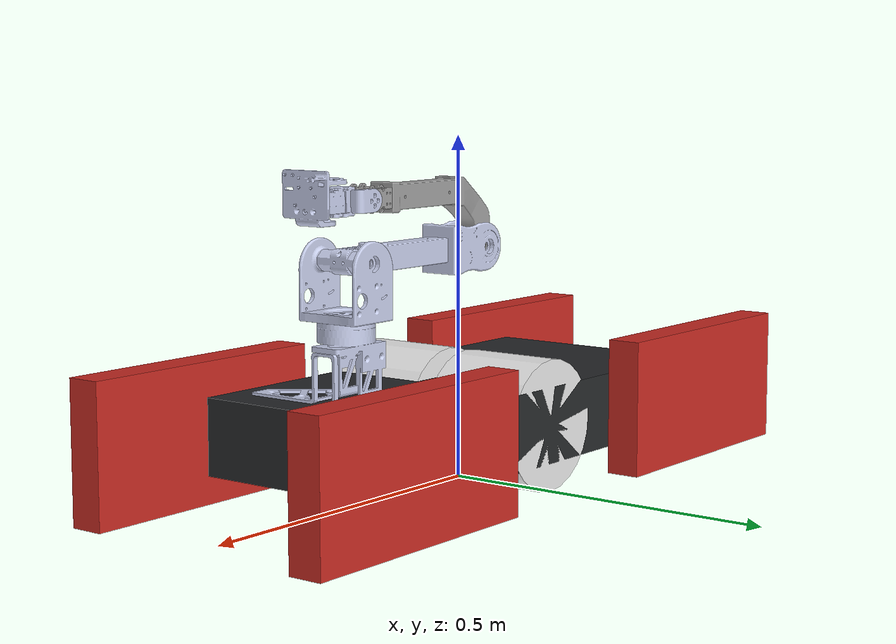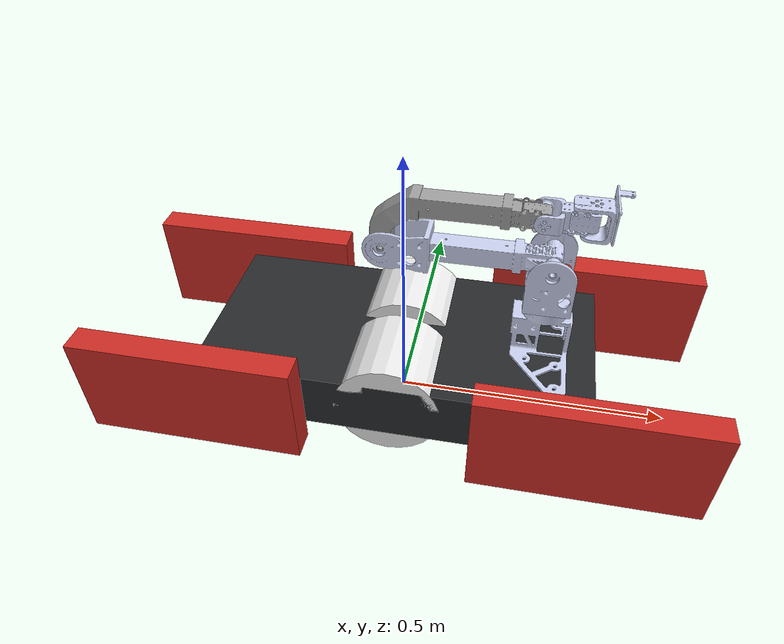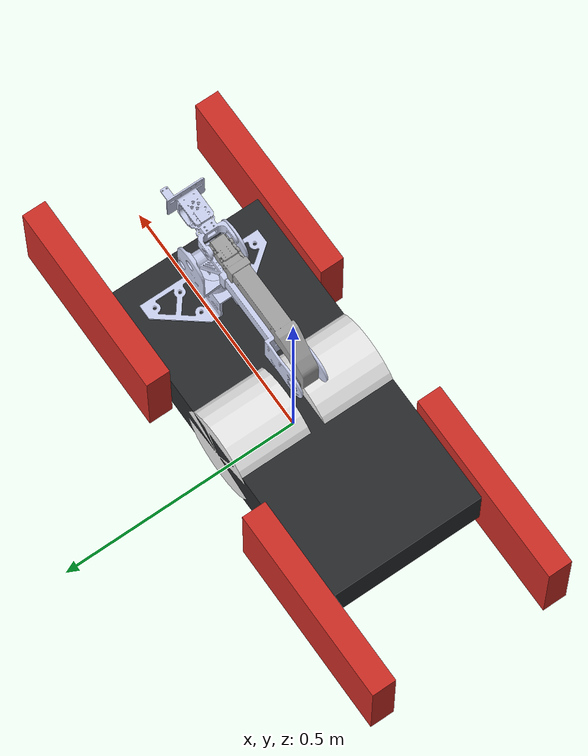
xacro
<?xml version="1.0"?>
<robot xmlns:xacro="http://www.ros.org/wiki/xacro" name="Lotti3">
    <xacro:arg name="initial_positions_file" default="initial_positions.yaml" />

    <!-- Import Lotti3 urdf file -->
    <xacro:include filename="$(find lotti_control3)/description/urdf/Lotti.urdf.xacro" />

    <!-- Import control_xacro -->
    <xacro:include filename="Lotti3.ros2_control.xacro" />

    <xacro:Lotti3_ros2_control name="FakeSystem" initial_positions_file="$(arg initial_positions_file)"/>

</robot>

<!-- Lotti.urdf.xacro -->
<robot xmlns:xacro="http://www.ros.org/wiki/xacro" name="Lotti3">

<!-- Simulation switch: pass use_sim:=true for Gazebo, default is real hardware -->
    <xacro:arg name="use_sim" default="false"/>

<!-- included files for properties -->
    <xacro:include filename="urdf_inertial_shapes.xacro" />
    <xacro:include filename="urdf_materials.xacro"/>

<!-- include files for parts -->
    <xacro:include filename="Lotti_arm3.xacro"/>
    <xacro:include filename="Lotti_body.xacro"/>

<!-- include controllers — switches between simulation and real hardware plugins -->
    <xacro:if value="$(arg use_sim)">
        <xacro:include filename="Lotti_gazebo_control.xacro"/>
        <xacro:include filename="$(find lotti_control3)/ros2_control/Lotti_sim.ros2_control.xacro"/>
    </xacro:if>
    <xacro:unless value="$(arg use_sim)">
        <xacro:include filename="$(find lotti_control3)/ros2_control/Lotti.ros2_control.xacro"/>
    </xacro:unless>

<!-- world origin -->

</robot>

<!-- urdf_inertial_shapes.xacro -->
<robot xmlns:xacro="http://www.ros.org/wiki/xacro" >

    <xacro:macro name="inertial_box" params="mass x y z *origin " >
        <inertial>
            <xacro:insert_block name="origin" />
            <mass value="${mass}" />
            <inertia ixx="${(1/12) * mass * (y*y+z*z)}" ixy="0.0" ixz="0.0"
                    iyy="${(1/12) * mass * (x*x+z*z)}" iyz="0.0"
                    izz="${(1/12) * mass * (x*x+z*z)}" />
        </inertial>
    </xacro:macro>
</robot>

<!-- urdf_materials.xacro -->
<robot xmlns:xacro="http://www.ros.org/wiki/xacro" >

    <material name="red">
        <color rgba="${204/255} ${44/255} ${36/255} 1" />
    </material>

    <material name="black">
        <color rgba ="${39/255} ${41/255} ${43/255} 1" />
    </material>

    <material name="orange">
        <color rgba ="${255/255} ${165/255} ${0/255} 1" />
    </material>

</robot>

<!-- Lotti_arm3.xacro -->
<robot xmlns:xacro="http://www.ros.org/wiki/xacro" >

<!-- Main Body info -->
  <xacro:property name="body_length" value="0.7"/>
  <xacro:property name="body_width" value="0.33"/>
  <xacro:property name="body_height" value="0.15"/>
  <xacro:property name="body_mass" value="25.0"/>

  <joint name="arm_base_joint" type="fixed">
    <origin xyz="${body_length/2 - 0.1} 0 ${body_height}" rpy="0 0 ${pi/2}" />
    <parent link="body_link" />
    <child link="arm_base_link" />
  </joint>

  <link name="arm_base_link">
    <inertial>
      <origin
        xyz="0.00013666 0.0026852 0.072354"
        rpy="0 0 0" />
      <mass value="0.25614" />
      <inertia
        ixx="0.00022758"
        ixy="-5.9194E-09"
        ixz="-3.0317E-10"
        iyy="0.00034913"
        iyz="-5.4826E-06"
        izz="0.00044613" />
    </inertial>
    <visual>
      <origin
        xyz="0 0 0"
        rpy="0 0 0" />
      <geometry>
        <mesh filename="package://lotti_control3/description/meshes/base_link.STL" />
      </geometry>
      <material name="">
        <color rgba="0.79216 0.81961 0.93333 1" />
      </material>
    </visual>
    <collision>
      <origin
        xyz="0 0 0"
        rpy="0 0 0" />
      <geometry>
        <mesh filename="package://lotti_control3/description/meshes/base_link.STL" />
      </geometry>
    </collision>
  </link>

  <link name="arm_link1_link">
    <inertial>
      <origin
        xyz="0.00028288 0.00078368 -0.043313"
        rpy="0 0 0" />
      <mass value="0.13631" />
      <inertia
        ixx="0.00022673"
        ixy="1.0071E-09"
        ixz="-1.2336E-07"
        iyy="0.00016614"
        iyz="4.2298E-07"
        izz="9.1314E-05" />
    </inertial>
    <visual>
      <origin
        xyz="0 0 0"
        rpy="0 0 0" />
      <geometry>
        <mesh filename="package://lotti_control3/description/meshes/arm_link1_link.STL" />
      </geometry>
      <material name="">
        <color rgba="0.79216 0.81961 0.93333 1" />
      </material>
    </visual>
    <collision>
      <origin
        xyz="0 0 0"
        rpy="0 0 0" />
      <geometry>
        <mesh filename="package://lotti_control3/description/meshes/arm_link1_link.STL" />
      </geometry>
    </collision>
  </link>

  <joint name="arm_link1_joint" type="revolute">
    <origin
      xyz="0 0 0.189"
      rpy="0 0 0" />
    <parent link="arm_base_link" />
    <child link="arm_link1_link" />
    <axis xyz="0 0 -1" />
    <limit lower="-3" upper="3" effort="10" velocity="0.25" />
  </joint>

  <link name="arm_link2_link">
    <inertial>
      <origin
        xyz="0.00022266 0.13312 -2.4551E-05"
        rpy="0 0 0" />
      <mass value="0.31437" />
      <inertia
        ixx="0.000499"
        ixy="-1.7595E-06"
        ixz="5.7714E-07"
        iyy="0.00016924"
        iyz="1.4222E-08"
        izz="0.00054376" />
    </inertial>
    <visual>
      <origin
        xyz="0 0 0"
        rpy="0 0 0" />
      <geometry>
        <mesh filename="package://lotti_control3/description/meshes/arm_link2_link.STL" />
      </geometry>
      <material name="">
        <color rgba="0.79216 0.81961 0.93333 1" />
      </material>
    </visual>
    <collision>
      <origin
        xyz="0 0 0"
        rpy="0 0 0" />
      <geometry>
        <mesh filename="package://lotti_control3/description/meshes/arm_link2_link.STL" />
      </geometry>
    </collision>
  </link>

  <joint name="arm_link2_joint" type="revolute">
    <origin
      xyz="0 0 0"
      rpy="0 0 0" />
    <parent link="arm_link1_link" />
    <child link="arm_link2_link" />
    <axis xyz="1 0 0" />
    <limit lower="-0.1" upper="3" effort="10" velocity="2" />
  </joint>

  <link name="arm_link3_link">
    <inertial>
      <origin
        xyz="0.00022345 -0.096229 0.066095"
        rpy="0 0 0" />
      <mass value="0.34831" />
      <inertia
        ixx="0.00058252"
        ixy="-2.5131E-08"
        ixz="2.7991E-09"
        iyy="0.00025303"
        iyz="0.00017307"
        izz="0.00040249" />
    </inertial>
    <visual>
      <origin
        xyz="0 0 0"
        rpy="0 0 0" />
      <geometry>
        <mesh filename="package://lotti_control3/description/meshes/arm_link3_link.STL" />
      </geometry>
      <material name="">
        <color rgba="0.62745 0.62745 0.62745 1" />
      </material>
    </visual>
    <collision>
      <origin
        xyz="0 0 0"
        rpy="0 0 0" />
      <geometry>
        <mesh filename="package://lotti_control3/description/meshes/arm_link3_link.STL" />
      </geometry>
    </collision>
  </link>

  <joint name="arm_link3_joint" type="revolute">
    <origin
      xyz="0 0.28615 -0.00017409"
      rpy="0 0 0" />
    <parent link="arm_link2_link" />
    <child link="arm_link3_link" />
    <axis xyz="1 0 0" />
    <limit lower="-3" upper="0.1" effort="10" velocity="3" />
  </joint>

  <link name="arm_link4_link">
    <inertial>
      <origin
        xyz="0.00088469 -0.040907 0.0002264"
        rpy="0 0 0" />
      <mass value="0.072649" />
      <inertia
        ixx="1.5639E-05"
        ixy="-1.0243E-09"
        ixz="4.4581E-10"
        iyy="1.9638E-05"
        iyz="-8.7682E-09"
        izz="2.9511E-05" />
    </inertial>
    <visual>
      <origin
        xyz="0 0 0"
        rpy="0 0 0" />
      <geometry>
        <mesh filename="package://lotti_control3/description/meshes/arm_link4_link.STL" />
      </geometry>
      <material name="">
        <color rgba="0.79216 0.81961 0.93333 1" />
      </material>
    </visual>
    <collision>
      <origin
        xyz="0 0 0"
        rpy="0 0 0" />
      <geometry>
        <mesh filename="package://lotti_control3/description/meshes/arm_link4_link.STL" />
      </geometry>
    </collision>
  </link>

  <joint name="arm_link4_joint" type="revolute">
    <origin
      xyz="0 -0.26146 0.0824"
      rpy="0 0 0" />
    <parent link="arm_link3_link" />
    <child link="arm_link4_link" />
    <axis xyz="1 0 0" />
    <limit lower="-1.6" upper="1.6" effort="10" velocity="1.1" />
  </joint>

  <link name="arm_link5_link">
    <inertial>
      <origin
        xyz="0.00063618 -0.015164 0.006516"
        rpy="0 0 0" />
      <mass value="0.054865" />
      <inertia
        ixx="3.8561E-05"
        ixy="4.0394E-07"
        ixz="-6.7824E-07"
        iyy="3.9816E-05"
        iyz="-3.9976E-06"
        izz="2.5638E-05" />
    </inertial>
    <visual>
      <origin
        xyz="0 0 0"
        rpy="0 0 0" />
      <geometry>
        <mesh filename="package://lotti_control3/description/meshes/arm_link5_link.STL" />
      </geometry>
      <material name="">
        <color rgba="0.79216 0.81961 0.93333 1" />
      </material>
    </visual>
    <collision>
      <origin
        xyz="0 0 0"
        rpy="0 0 0" />
      <geometry>
        <mesh filename="package://lotti_control3/description/meshes/arm_link5_link.STL" />
      </geometry>
    </collision>
  </link>

  <joint name="arm_link5_joint" type="revolute">
    <origin
      xyz="0.00093562 -0.074331 0.0004"
      rpy="0 0 0" />
    <parent link="arm_link4_link" />
    <child link="arm_link5_link" />
    <axis xyz="0 0 -1" />
    <limit lower="-1.6" upper="1.6" effort="10" velocity="1.1" />
  </joint>

</robot>

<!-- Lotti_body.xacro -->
<robot xmlns:xacro="http://www.ros.org/wiki/xacro" >

<!-- Main Body -->
    <xacro:property name="body_length" value="0.7"/>
    <xacro:property name="body_width" value="0.33"/>
    <xacro:property name="body_height" value="0.15"/>
    <xacro:property name="body_mass" value="25.0"/>

    <link name="body_link">
        <visual>
            <origin rpy="0 0 0" xyz="0 0 ${(body_height/2)+0.02}"/>
            <geometry>
                <box size="${body_length} ${body_width} ${body_height-0.04}"/>
            </geometry>
            <material name="black"/>
        </visual>
        <collision>
            <origin rpy="0 0 0" xyz="0 0 ${(body_height/2)}"/>
            <geometry>
                <box size="0.1 0.1 0.1"/>
            </geometry>
        </collision>
        <innertial></innertial>
    </link>

<!-- Chains (represented by wheels) -->
<!-- wheel macro-->
    <xacro:property name="wheel_length" value="0.15"/>
    <xacro:property name="wheel_radius" value="${0.19/2}"/>
    <xacro:property name="wheel_mass" value="1"/>
    <xacro:property name="wheel_seperation" value="${body_width - wheel_length}"/>

    <xacro:macro name="wheel_link" params="position">
        <link name="${position}_wheel_link">
            <visual>
                <origin xyz="0 0 0" rpy="${pi/2} 0 0"/>
                <geometry>
                <cylinder length="${wheel_length}" radius="${wheel_radius}"/>
                </geometry>
                <material name="white"/>
            </visual>

            <collision>
                <origin xyz="0 0 0" rpy="${pi/2} 0 0"/>
                <geometry>
                <cylinder length="${wheel_length}" radius="${wheel_radius}"/>
                </geometry>
            </collision>
            <xacro:inertial_cylinder mass="${wheel_mass}" length="${wheel_length}" radius="${wheel_radius}">
                <origin xyz="0 0 0" rpy="${pi/2} 0 0"/>
            </xacro:inertial_cylinder>
        </link>
    </xacro:macro>

<!-- Left Chain-->
<!-- Main Wheel-->
    <joint name="left_chain_joint" type="fixed">
        <origin xyz="0 ${wheel_seperation/2} ${wheel_radius}" rpy="0 0 0"/>
        <parent link="body_link"/>
        <child link="left_main_wheel_link"/>
        <axis xyz="0 1 0"/>
    </joint>

    <xacro:wheel_link position="left_main"/>

<!-- Right Chain-->
<!-- Main Wheel-->
    <joint name="right_chain_joint" type="fixed">
        <origin xyz="0 ${-wheel_seperation/2} ${wheel_radius}" rpy="0 0 0"/>
        <parent link="body_link"/>
        <child link="right_main_wheel_link"/>
        <axis xyz="0 1 0"/>
    </joint>

    <xacro:wheel_link position="right_main"/>

<!-- Flipper -->
    <xacro:property name="flipper_length" value="0.4"/>
    <xacro:property name="flipper_width" value="0.05"/>
    <xacro:property name="flipper_height" value="0.2"/>
    <xacro:property name="flipper_mass" value="3.0"/>

<!-- Flipper link macro -->
    <xacro:macro name="flipper_link" params="position">
        <link name="flipper_${position}_link">
            <visual>
                <origin xyz="${(flipper_height/2) - (flipper_length/2)} 0 0" rpy="0 0 0"/>
                <geometry>
                    <box size="${flipper_length} ${flipper_width} ${flipper_height}"/>
                </geometry>
                <material name="red"/>
            </visual>
            <collision>
                <origin xyz="${(flipper_height/2) - (flipper_length/2)} 0 0" rpy="0 0 0"/>
                <geometry>
                    <box size="${flipper_length} ${flipper_width} ${flipper_height}"/>
                </geometry>
            </collision>
            <xacro:inertial_box mass="${flipper_mass}" x="${flipper_length}" y="${flipper_width}" z="${flipper_height}">
                <origin xyz="${(flipper_height/2) - (flipper_length/2)} 0 0" rpy="0 0 0"/>
            </xacro:inertial_box>
        </link>
    </xacro:macro>

<!-- Front Left Flipper-->
    <joint name="flipper_fr_joint" type="continuous">
        <origin xyz="${body_length/2 - flipper_height/2} ${(body_width/2) + (flipper_width/2)} ${flipper_height/2}" rpy="0 ${pi} 0"/>
        <parent link="body_link"/>
        <child link="flipper_fr_link"/>
        <axis xyz="0 1 0"/>
    </joint>

    <xacro:flipper_link position="fr"/>

<!-- Front Right Flipper-->
    <joint name="flipper_fl_joint" type="continuous">
        <origin xyz="${(body_length/2) - (flipper_height/2)} ${-(body_width/2) - (flipper_width/2)} ${flipper_height/2}" rpy="0 ${pi} 0"/>
        <parent link="body_link"/>
        <child link="flipper_fl_link"/>
        <axis xyz="0 1 0"/>
    </joint>

    <xacro:flipper_link position="fl"/>

<!-- Rear Left Flipper-->
    <joint name="flipper_rr_joint" type="continuous">
        <origin xyz="${-(body_length/2) + (flipper_height/2)} ${(body_width/2) + (flipper_width/2)} ${flipper_height/2}" rpy="0 0 0"/>
        <parent link="body_link"/>
        <child link="flipper_rr_link"/>
        <axis xyz="0 -1 0"/>
    </joint>

    <xacro:flipper_link position="rr"/>

<!-- Rear Right Flipper-->
    <joint name="flipper_rl_joint" type="continuous">
        <origin xyz="${-(body_length/2) + (flipper_height/2)} ${-(body_width/2) - (flipper_width/2)} ${flipper_height/2}" rpy="0 0 0"/>
        <parent link="body_link"/>
        <child link="flipper_rl_link"/>
        <axis xyz="0 -1 0"/>
    </joint>

    <xacro:flipper_link position="rl"/>

</robot>
